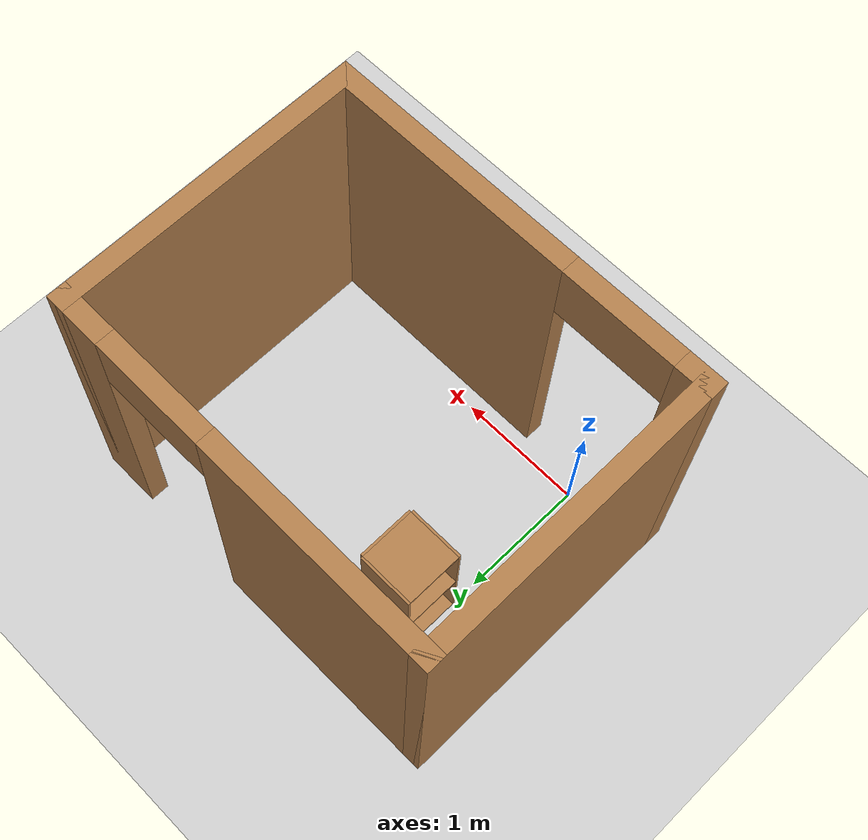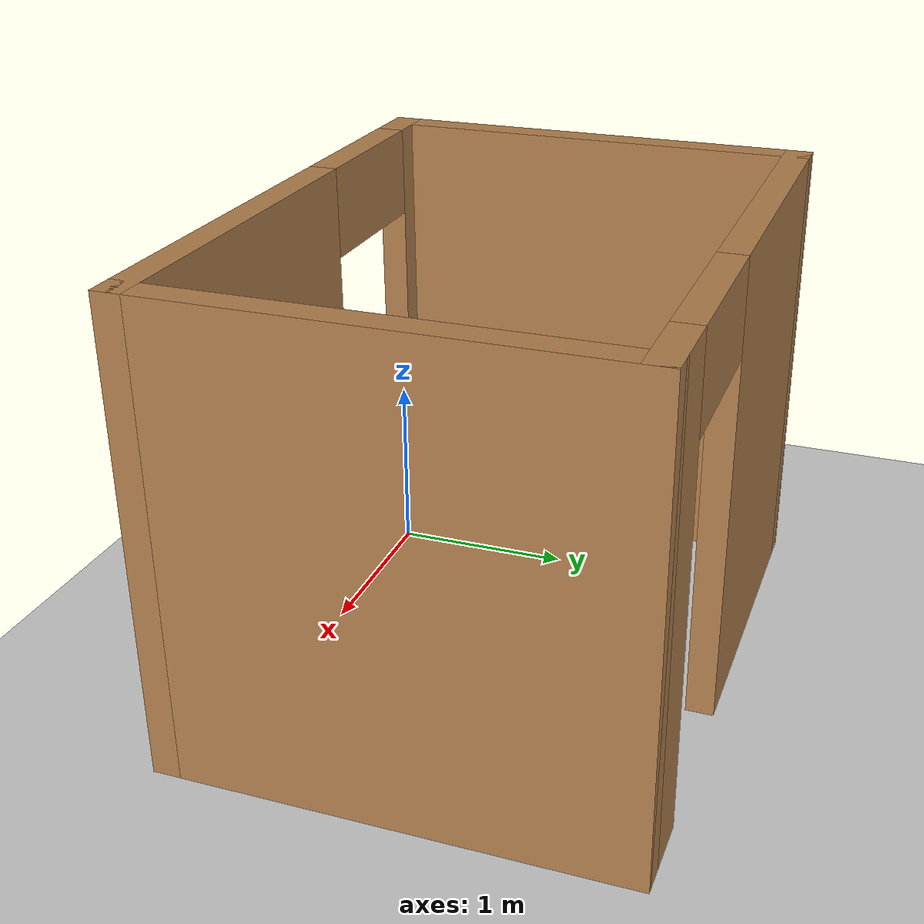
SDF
<sdf version="1.7">
 <world name="default">
  <light name="sun" type="directional">
   <pose>0 0 10 0 -0 0</pose>
   <diffuse>0.8 0.8 0.8 1</diffuse>
   <specular>0.2 0.2 0.2 1</specular>
   <attenuation>
    <range>1000</range>
    <constant>0.9</constant>
    <linear>0.01</linear>
    <quadratic>0.001</quadratic>
   </attenuation>
   <direction>-0.5 0.1 -0.9</direction>
   <spot><inner_angle>0</inner_angle><outer_angle>0</outer_angle><falloff>0</falloff></spot>
  </light>
  <model name="ground_plane">
   <static>1</static>
   <link name="link">
    <collision name="collision">
     <geometry><plane><normal>0 0 1</normal><size>100 100</size></plane></geometry>
     <surface><friction><ode><mu>100</mu><mu2>50</mu2></ode></friction></surface>
    </collision>
    <visual name="visual">
     <cast_shadows>0</cast_shadows>
     <geometry><plane><normal>0 0 1</normal><size>100 100</size></plane></geometry>
     <material>
      <script><uri>file://media/materials/scripts/gazebo.material</uri><name>Gazebo/Grey</name></script>
     </material>
    </visual>
   </link>
  </model>
  <gravity>0 0 -9.8</gravity>
  <magnetic_field>6e-06 2.3e-05 -4.2e-05</magnetic_field>
  <atmosphere type="adiabatic"/>
  <physics type="ode">
   <max_step_size>0.001</max_step_size>
   <real_time_factor>1</real_time_factor>
   <real_time_update_rate>1000</real_time_update_rate>
  </physics>
  <scene><ambient>0.4 0.4 0.4 1</ambient><background>0.7 0.7 0.7 1</background><shadows>1</shadows></scene>
  <audio><device>default</device></audio>
  <spherical_coordinates>
   <surface_model>EARTH_WGS84</surface_model>
   <latitude_deg>0</latitude_deg>
   <longitude_deg>0</longitude_deg>
   <elevation>0</elevation>
   <heading_deg>0</heading_deg>
  </spherical_coordinates>
  <model name="test3">
   <pose>0.964561 1.48495 0 0 -0 0</pose>
   <link name="Wall_1">
    <pose>0 -1.6775 0 0 -0 3.14159</pose>
    <visual name="Wall_1_Visual_0">
     <pose>-0.5975 0 1.25 0 -0 0</pose>
     <geometry><box><size>2.055 0.15 2.5</size></box></geometry>
     <material>
      <script><uri>file://media/materials/scripts/gazebo.material</uri><name>Gazebo/Wood</name></script>
      <ambient>1 1 1 1</ambient>
     </material>
     <meta><layer>0</layer></meta>
    </visual>
    <collision name="Wall_1_Collision_0">
     <geometry><box><size>2.055 0.15 2.5</size></box></geometry>
     <pose>-0.5975 0 1.25 0 -0 0</pose>
    </collision>
    <visual name="Wall_1_Visual_1">
     <pose>1.4775 0 1.25 0 -0 0</pose>
     <geometry><box><size>0.295 0.15 2.5</size></box></geometry>
     <material>
      <script><uri>file://media/materials/scripts/gazebo.material</uri><name>Gazebo/Wood</name></script>
      <ambient>1 1 1 1</ambient>
     </material>
     <meta><layer>0</layer></meta>
    </visual>
    <collision name="Wall_1_Collision_1">
     <geometry><box><size>0.295 0.15 2.5</size></box></geometry>
     <pose>1.4775 0 1.25 0 -0 0</pose>
    </collision>
    <visual name="Wall_1_Visual_2">
     <pose>0.88 0 2.25 0 -0 0</pose>
     <geometry><box><size>0.9 0.15 0.5</size></box></geometry>
     <material>
      <script><uri>file://media/materials/scripts/gazebo.material</uri><name>Gazebo/Wood</name></script>
      <ambient>1 1 1 1</ambient>
     </material>
     <meta><layer>0</layer></meta>
    </visual>
    <collision name="Wall_1_Collision_2">
     <geometry><box><size>0.9 0.15 0.5</size></box></geometry>
     <pose>0.88 0 2.25 0 -0 0</pose>
    </collision>
   </link>
   <link name="Wall_3">
    <collision name="Wall_3_Collision">
     <geometry><box><size>2.5 0.15 2.5</size></box></geometry>
     <pose>0 0 1.25 0 -0 0</pose>
    </collision>
    <visual name="Wall_3_Visual">
     <pose>0 0 1.25 0 -0 0</pose>
     <geometry><box><size>2.5 0.15 2.5</size></box></geometry>
     <material>
      <script><uri>file://media/materials/scripts/gazebo.material</uri><name>Gazebo/Wood</name></script>
      <ambient>1 1 1 1</ambient>
     </material>
     <meta><layer>0</layer></meta>
    </visual>
    <pose>-1.55 -0.5025 0 0 -0 1.5708</pose>
   </link>
   <link name="Wall_4">
    <pose>0 0.6725 0 0 -0 0</pose>
    <visual name="Wall_4_Visual_0">
     <pose>-0.6775 0 1.25 0 -0 0</pose>
     <geometry><box><size>1.895 0.15 2.5</size></box></geometry>
     <material>
      <script><uri>file://media/materials/scripts/gazebo.material</uri><name>Gazebo/Wood</name></script>
      <ambient>1 1 1 1</ambient>
     </material>
     <meta><layer>0</layer></meta>
    </visual>
    <collision name="Wall_4_Collision_0">
     <geometry><box><size>1.895 0.15 2.5</size></box></geometry>
     <pose>-0.6775 0 1.25 0 -0 0</pose>
    </collision>
    <visual name="Wall_4_Visual_1">
     <pose>1.3975 0 1.25 0 -0 0</pose>
     <geometry><box><size>0.455 0.15 2.5</size></box></geometry>
     <material>
      <script><uri>file://media/materials/scripts/gazebo.material</uri><name>Gazebo/Wood</name></script>
      <ambient>1 1 1 1</ambient>
     </material>
     <meta><layer>0</layer></meta>
    </visual>
    <collision name="Wall_4_Collision_1">
     <geometry><box><size>0.455 0.15 2.5</size></box></geometry>
     <pose>1.3975 0 1.25 0 -0 0</pose>
    </collision>
    <visual name="Wall_4_Visual_2">
     <pose>0.72 0 2.25 0 -0 0</pose>
     <geometry><box><size>0.9 0.15 0.5</size></box></geometry>
     <material>
      <script><uri>file://media/materials/scripts/gazebo.material</uri><name>Gazebo/Wood</name></script>
      <ambient>1 1 1 1</ambient>
     </material>
     <meta><layer>0</layer></meta>
    </visual>
    <collision name="Wall_4_Collision_2">
     <geometry><box><size>0.9 0.15 0.5</size></box></geometry>
     <pose>0.72 0 2.25 0 -0 0</pose>
    </collision>
   </link>
   <link name="Wall_5">
    <collision name="Wall_5_Collision">
     <geometry><box><size>2.5 0.15 2.5</size></box></geometry>
     <pose>0 0 1.25 0 -0 0</pose>
    </collision>
    <visual name="Wall_5_Visual">
     <pose>0 0 1.25 0 -0 0</pose>
     <geometry><box><size>2.5 0.15 2.5</size></box></geometry>
     <material>
      <script><uri>file://media/materials/scripts/gazebo.material</uri><name>Gazebo/Wood</name></script>
      <ambient>1 1 1 1</ambient>
     </material>
     <meta><layer>0</layer></meta>
    </visual>
    <pose>1.55 -0.5025 0 0 -0 -1.5708</pose>
   </link>
   <static>1</static>
  </model>
  <model name="cabinet">
   <static>1</static>
   <link name="cabinet_bottom_plate">
    <inertial>
     <pose>0 0 -1 0 -0 0</pose>
     <inertia><ixx>2.05</ixx><ixy>0</ixy><ixz>0</ixz><iyy>2.05</iyy><iyz>0</iyz><izz>2.05</izz></inertia>
     <mass>25</mass>
    </inertial>
    <collision name="cabinet_bottom_plate_geom">
     <pose>0 0 0.01 0 -0 0</pose>
     <geometry><box><size>0.45 0.45 0.02</size></box></geometry>
    </collision>
    <visual name="cabinet_bottom_plate_geom_visual">
     <pose>0 0 0.01 0 -0 0</pose>
     <geometry><box><size>0.45 0.45 0.02</size></box></geometry>
     <material>
      <script><uri>file://media/materials/scripts/gazebo.material</uri><name>Gazebo/Wood</name></script>
     </material>
    </visual>
    <collision name="cabinet_bottom_plate_geom_cabinet_back_plate">
     <pose>0.235 0 0.51 0 -0 0</pose>
     <geometry><box><size>0.02 0.45 1.02</size></box></geometry>
    </collision>
    <visual name="cabinet_bottom_plate_geom_cabinet_back_plate_visual">
     <pose>0.235 0 0.51 0 -0 0</pose>
     <geometry><box><size>0.02 0.45 1.02</size></box></geometry>
     <material>
      <script><uri>file://media/materials/scripts/gazebo.material</uri><name>Gazebo/Wood</name></script>
     </material>
    </visual>
    <collision name="cabinet_bottom_plate_geom_cabinet_left_plate">
     <pose>0 0.235 0.51 0 -0 0</pose>
     <geometry><box><size>0.45 0.02 1.02</size></box></geometry>
    </collision>
    <visual name="cabinet_bottom_plate_geom_cabinet_left_plate_visual">
     <pose>0 0.235 0.51 0 -0 0</pose>
     <geometry><box><size>0.45 0.02 1.02</size></box></geometry>
     <material>
      <script><uri>file://media/materials/scripts/gazebo.material</uri><name>Gazebo/Wood</name></script>
     </material>
    </visual>
    <collision name="cabinet_bottom_plate_geom_cabinet_middle_plate">
     <pose>0 0 0.51 0 -0 0</pose>
     <geometry><box><size>0.45 0.45 0.02</size></box></geometry>
    </collision>
    <visual name="cabinet_bottom_plate_geom_cabinet_middle_plate_visual">
     <pose>0 0 0.51 0 -0 0</pose>
     <geometry><box><size>0.45 0.45 0.02</size></box></geometry>
     <material>
      <script><uri>file://media/materials/scripts/gazebo.material</uri><name>Gazebo/Wood</name></script>
     </material>
    </visual>
    <collision name="cabinet_bottom_plate_geom_cabinet_right_plate">
     <pose>0 -0.235 0.51 0 -0 0</pose>
     <geometry><box><size>0.45 0.02 1.02</size></box></geometry>
    </collision>
    <visual name="cabinet_bottom_plate_geom_cabinet_right_plate_visual">
     <pose>0 -0.235 0.51 0 -0 0</pose>
     <geometry><box><size>0.45 0.02 1.02</size></box></geometry>
     <material>
      <script><uri>file://media/materials/scripts/gazebo.material</uri><name>Gazebo/Wood</name></script>
     </material>
    </visual>
    <collision name="cabinet_bottom_plate_geom_cabinet_top_plate">
     <pose>0 0 1.01 0 -0 0</pose>
     <geometry><box><size>0.45 0.45 0.02</size></box></geometry>
    </collision>
    <visual name="cabinet_bottom_plate_geom_cabinet_top_plate_visual">
     <pose>0 0 1.01 0 -0 0</pose>
     <geometry><box><size>0.45 0.45 0.02</size></box></geometry>
     <material>
      <script><uri>file://media/materials/scripts/gazebo.material</uri><name>Gazebo/Wood</name></script>
     </material>
    </visual>
   </link>
   <pose>0.228384 1.44312 0 0 -0 0</pose>
  </model>
 </world>
</sdf>
